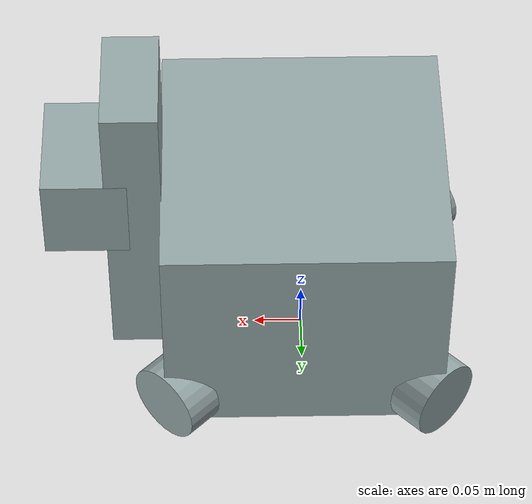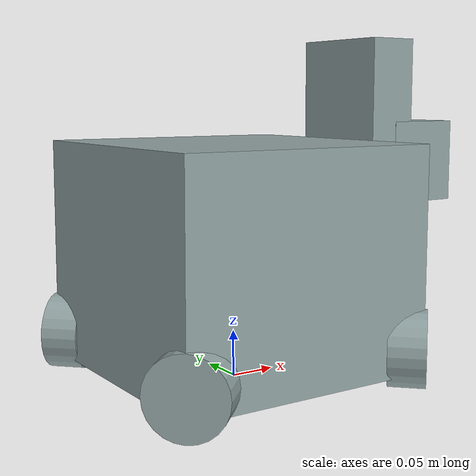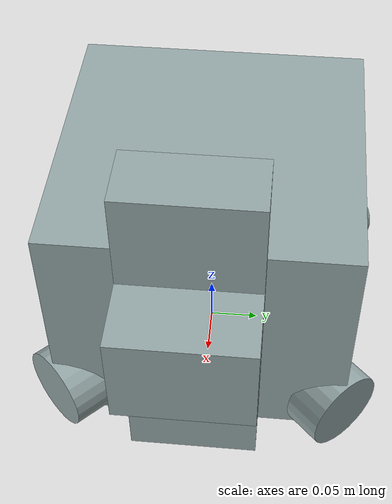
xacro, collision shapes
<?xml version="1.0"?>

<robot xmlns:xacro="http://www.ros.org/wiki/xacro"
 	xmlns:sensor="http://playerstage.sourceforge.net/gazebo/xmlschema/#sensor"
    	xmlns:controller="http://playerstage.sourceforge.net/gazebo/xmlschema/#controller"
    	xmlns:interface="http://playerstage.sourceforge.net/gazebo/xmlschema/#interface"
	name="3drobot">

	<xacro:include filename="$(find robot_description)/urdf/3drobot.gazebo" />

	<material name="gray">
		<color rgba="0.58 0.65 0.65 1"/>
	</material>

	<material name="gray2">
		<color rgba="0.58 0.65 0.65 1"/>
	</material>

	<link name="base_link">
   		<visual>
			<geometry>
      			<mesh filename="package://robot_description/meshes/base.STL" scale="0.001 0.001 0.001"/>
     		</geometry>
			<origin rpy="0 0 0" xyz="-0.14364 -0.14364 0.0157"/>
			<material name="gray"/>
   		</visual>
		<collision>
			<geometry>
				<box size="0.287279 0.287279 0.239"/>
			</geometry>
			<origin rpy="0 0 0" xyz="0 0 0.135"/>
		</collision>
			<inertial>
			<mass value="1.78"/>
	 		<inertia ixx="0.01336" ixy="0.0" ixz="-0.00008" iyx="0.0" iyy="0.01357" iyz="-0.00002" izx="-0.00008" izy="-0.00002" izz="0.01323"/>
		</inertial>
 	</link>

 	<link name="wheel_1">
   		<visual>
     		<geometry>
       			<mesh filename="package://robot_description/meshes/omniwheel.STL" scale="0.001 0.001 0.001"/>
				<scale>0.001 0.001 0.001</scale>
     		</geometry>
			<origin rpy="1.5708 0 0" xyz="-0.046275 0.019675 -0.046275"/>
			<material name="gray2"/>>
		</visual>
		<collision>
			<geometry>
				<cylinder length="0.03935" radius="0.041275"/>
			</geometry>
			<origin rpy="1.5708 0 0" xyz="0 0 0"/>
		</collision>
		<inertial>
			<mass value="0.127"/>
	 		<inertia ixx="0.00007" ixy="0.0" ixz="0.0" iyy="0.00011" iyz="0.0" izz="0.00007"/>
		</inertial>
 	</link>

 	<link name="wheel_2">
   		<visual>
     		<geometry>
       			<mesh filename="package://robot_description/meshes/omniwheel.STL" scale="0.001 0.001 0.001"/>
				<scale>0.001 0.001 0.001</scale>
     		</geometry>
			<origin rpy="1.5708 0 0" xyz="-0.046275 0.019675 -0.046275"/>
			<material name="gray2"/>>
		</visual>
		<collision>
			<geometry>
				   <cylinder length="0.03935" radius="0.041275"/>
			</geometry>
			<origin rpy="1.5708 0 0" xyz="0 0 0"/>
		</collision>
		<inertial>
			<mass value="0.127"/>
	 		<inertia ixx="0.00007" ixy="0.0" ixz="0.0" iyy="0.00011" iyz="0.0" izz="0.00007"/>
		</inertial>
 	</link>

 	<link name="wheel_3">
   		<visual>
     		<geometry>
       			<mesh filename="package://robot_description/meshes/omniwheel.STL" scale="0.001 0.001 0.001"/>
				<scale>0.001 0.001 0.001</scale>
     		</geometry>
			<origin rpy="1.5708 0 0" xyz="-0.046275 0.019675 -0.046275"/>
			<material name="gray2"/>>
		</visual>
		<collision>
			<geometry>
				   <cylinder length="0.03935" radius="0.041275"/>
			</geometry>
			<origin rpy="1.5708 0 0" xyz="0 0 0"/>
		</collision>
		<inertial>
			<mass value="0.127"/>
	 		<inertia ixx="0.00007" ixy="0.0" ixz="0.0" iyy="0.00011" iyz="0.0" izz="0.00007"/>
		</inertial>
 	</link>

 	<link name="wheel_4">
   		<visual>
     		<geometry>
       			<mesh filename="package://robot_description/meshes/omniwheel.STL" scale="0.001 0.001 0.001"/>
				<scale>0.001 0.001 0.001</scale>
     		</geometry>
			<origin rpy="1.5708 0 0" xyz="-0.046275 0.019675 -0.046275"/>
			<material name="gray2"/>>
		</visual>
		<collision>
			<geometry>
				   <cylinder length="0.03935" radius="0.041275"/>
			</geometry>
			<origin rpy="1.5708 0 0" xyz="0 0 0"/>
		</collision>
		<inertial>
			<mass value="0.127"/>
	 		<inertia ixx="0.00007" ixy="0.0" ixz="0.0" iyy="0.00011" iyz="0.0" izz="0.00007"/>
		</inertial>
 	</link>

	<link name="z_axis">
   		<visual>
     		<geometry>
       			<mesh filename="package://robot_description/meshes/ejez.STL" scale="0.001 0.001 0.001"/>
				<scale>0.001 0.001 0.001</scale>
     		</geometry>
			<origin rpy="0 0 0" xyz="-0.01 -0.05976 0"/>
			<material name="gray2"/>>
		</visual>
		<collision>
			<geometry>
       			<box size="0.0565 0.119526 0.323"/>
			</geometry>
			<origin rpy="0 0 0" xyz="0.027 0 0.163"/>
		</collision>
		<inertial>
			<mass value="0.19422"/>
	 		<inertia ixx="0.00274" ixy="0.0" ixz="0.00002" iyx="0.0" iyy="0.00259" iyz="0.0" izx="0.00002" izy="0.0" izz="0.00018"/>
		</inertial>
 	</link>

	<link name="hotend">
   		<visual>
     		<geometry>
       			<mesh filename="package://robot_description/meshes/hotend.STL" scale="0.001 0.001 0.001"/>
				<scale>0.001 0.001 0.001</scale>
     		</geometry>
			<origin rpy="0 0 0" xyz="-0.068 -0.0599 0.006"/>
			<material name="gray2"/>>
		</visual>
		<collision>
			<geometry>
       			<box size="0.085329 0.119724 0.090945"/>
			</geometry>
			<origin rpy="0 0 0" xyz="0 0 0.039215"/>
		</collision>
		<inertial>
			<mass value="0.022"/>
	 		<inertia ixx="0.00008" ixy="0.0" ixz="-0.00003" iyx="0.0" iyy="0.00008" iyz="0.0" izx="-0.00003" izy="0.0" izz="0.00010"/>
		</inertial>
 	</link>

	<link name="imu_link">
   		<visual>
     		<geometry>
       			<box size="0.04 0.02 0.001"/>
     		</geometry>
			<origin rpy="0 0 0" xyz="0 0 0"/>
			<material name="gray2"/>>
		</visual>
		<collision>
			<geometry>
       			<box size="0.04 0.02 0.001"/>
			</geometry>
			<origin rpy="0 0 0" xyz="0 0 0"/>
		</collision>
		<inertial>
			<mass value="1e-5" />
	 		<inertia ixx="1e-6" ixy="0" ixz="0" iyy="1e-6" iyz="0" izz="1e-6" />
		</inertial>
 	</link>

	<joint name="base_to_wheel1" type="continuous">
		<parent link="base_link"/>
		<child link="wheel_1"/>
		<origin rpy="0 0 -0.7854" xyz="0.13145 0.13145 0.04115"/>
		<axis xyz="0 1 0" />
	</joint>

	<joint name="base_to_wheel2" type="continuous">
		<parent link="base_link"/>
		<child link="wheel_2"/>
		<origin rpy="0 0 0.7854" xyz="-0.13145 0.13145 0.04115"/>
		<axis xyz="0 1 0" />
	</joint>

	<joint name="base_to_wheel3" type="continuous">
		<parent link="base_link"/>
		<child link="wheel_3"/>
		<origin rpy="0 0 2.3562" xyz="-0.13145 -0.13145 0.04115"/>
		<axis xyz="0 1 0" />
	</joint>

	<joint name="base_to_wheel4" type="continuous">
		<parent link="base_link"/>
		<child link="wheel_4"/>
		<origin rpy="0 0 -2.3562" xyz="0.13145 -0.13145 0.04115"/>
		<axis xyz="0 1 0" />
	</joint>

	<joint name="base_to_zaxis" type="fixed">
		<parent link="base_link"/>
		<child link="z_axis"/>
		<origin rpy="0 0 0" xyz="0.14364 0 0.04115"/>
		<axis xyz="0 0 1" />
	</joint>

	<joint name="zaxis_to_hotend" type="prismatic">
		<parent link="z_axis"/>
		<child link="hotend"/>
		<origin rpy="0 0 0" xyz="0.075 0 -0.04115"/>
		<limit effort="1000.0" lower="0.18" upper="0.2" velocity="0.001"/>
		<axis xyz="0 0 1" />
	</joint>

	<joint name="imu_joint" type="fixed">
		<parent link="base_link"/>
		<child link="imu_link"/>
		<origin rpy="0 0 0" xyz="0 0 0.079"/>
		<axis xyz="0 0 1" />
 	</joint>

	<!-- Drive controller -->
	<gazebo>
		<plugin name="omni_steering" filename="libgazebo_ros_planar_move.so">
			<commandTopic>cmd_vel</commandTopic>
			<odometrytopic>odom</odometrytopic>
			<odometryFrame>odom</odometryFrame>
			<odometryRate>50.0</odometryRate>
			<robotBaseFrame>base_link</robotBaseFrame>
			<publishTF>true</publishTF>
		</plugin>
	</gazebo>
</robot>
